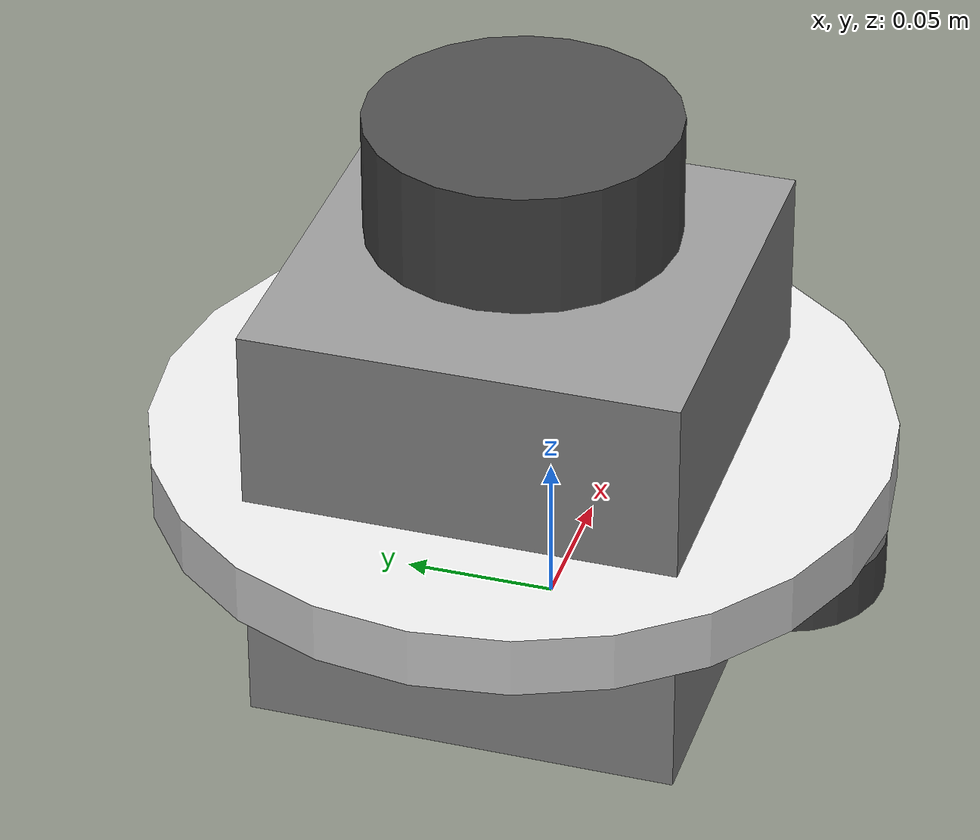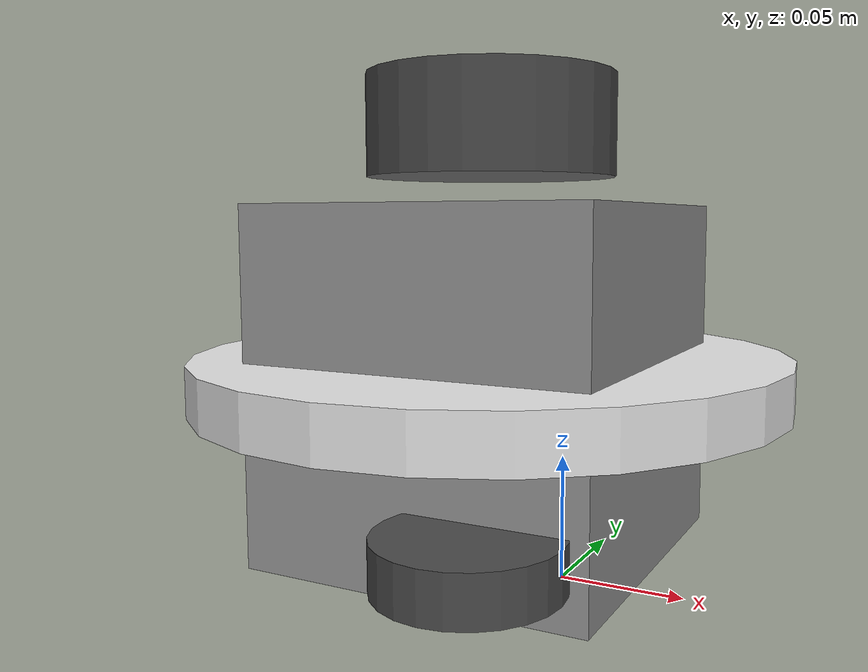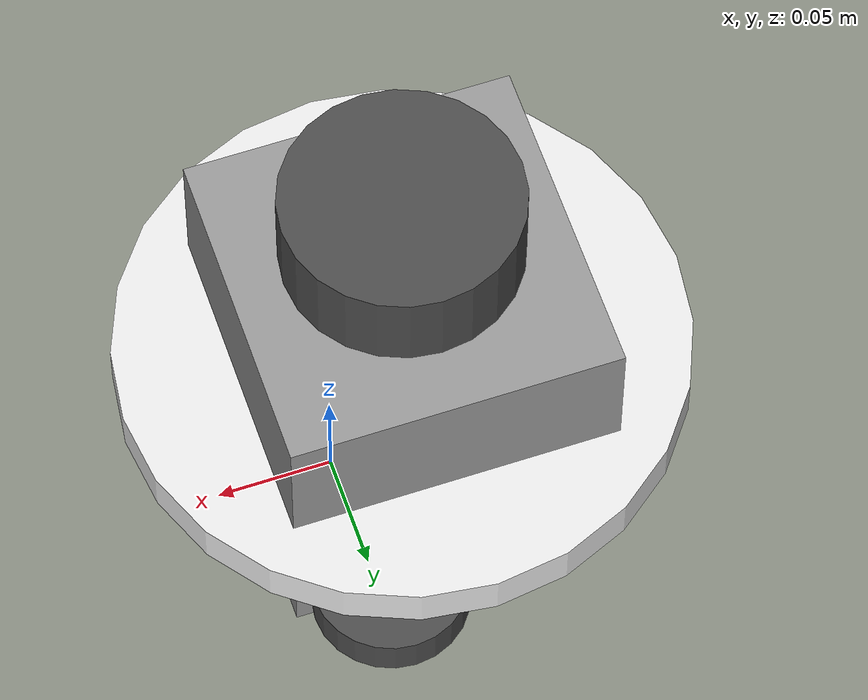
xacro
<?xml version="1.0" ?>
<robot name="turtlebot3_burger" xmlns:xacro="http://ros.org/wiki/xacro">
  <xacro:include filename="$(find Multi-UAV-Multi-Target)/urdf/turtlebot3_description/common_properties.xacro"/>
  <xacro:include filename="$(find Multi-UAV-Multi-Target)/urdf/turtlebot3_description/turtlebot3_burger.gazebo.xacro"/>

  <link name="base_footprint"/>

  <joint name="base_joint" type="fixed">
    <parent link="base_footprint"/>
    <child link="base_link"/>
    <origin xyz="0.0 0.0 0.010" rpy="0 0 0"/>
  </joint>

  <link name="base_link">
    <visual>
      <origin xyz="-0.032 0 0.070" rpy="0 0 0"/>
      <geometry>
        <box size="0.140 0.140 0.140"/>
        <cylinder length="0.14" radius="0.12"/>
      </geometry>
      <material name="dark"/>
    </visual>
    <collision>
      <origin xyz="-0.032 0 0.070" rpy="0 0 0"/>
      <geometry>
        <box size="0.140 0.140 0.140"/>
      </geometry>
    </collision>
    <inertial>
      <origin xyz="-0.032 0 0" rpy="0 0 0"/>
      <mass value="1"/>
      <inertia ixx="0.01" ixy="0.0" ixz="0.0"
               iyy="0.01" iyz="0.0"
               izz="0.01" />
    </inertial>
  </link>

  <joint name="contact_sensor_joint" type="fixed">
    <parent link="base_footprint"/>
    <child link="contact_sensor"/>
    <origin xyz="0.0 0.0 0.010" rpy="0 0 0"/>
  </joint>

  <link name="contact_sensor">
    <visual>
      <origin xyz="-0.032 0 0.07" rpy="0 0 0"/>
      <geometry>
        <cylinder length="0.02" radius="0.12"/>
      </geometry>
      <material name="white"/>
    </visual>
    <collision>
      <origin xyz="-0.032 0 0.07" rpy="0 0 0"/>
      <max_contacts>100</max_contacts>
      <geometry>
        <cylinder length="0.02" radius="0.12"/>
      </geometry>
    </collision>
    <inertial>
      <origin xyz="-0.032 0 0" rpy="0 0 0"/>
      <mass value="1"/>
      <inertia ixx="0.01" ixy="0" ixz="0"
               iyy="0.01" iyz="0"
               izz="0.01" />
    </inertial>
  </link>

  <joint name="wheel_left_joint" type="continuous">
    <parent link="base_link"/>
    <child link="wheel_left_link"/>
    <origin xyz="0.0 0.08 0.023" rpy="${-M_PI*0.5} 0 0"/>
    <axis xyz="0 0 1"/>
  </joint>

  <link name="wheel_left_link">
    <visual>
      <origin xyz="0 0 0" rpy="${M_PI*0.5} 0 0"/>
      <geometry>
        <cylinder length="0.018" radius="0.033"/>
      </geometry>
      <material name="dark"/>
    </visual>

    <collision>
      <origin xyz="0 0 0" rpy="0 0 0"/>
      <geometry>
        <cylinder length="0.018" radius="0.033"/>
      </geometry>
    </collision>

    <inertial>
      <origin xyz="0 0 0" />
      <mass value="0.01" />
      <inertia ixx="0.001" ixy="0.0" ixz="0.0"
               iyy="0.001" iyz="0.0"
               izz="0.001" />
    </inertial>
  </link>

  <joint name="wheel_right_joint" type="continuous">
    <parent link="base_link"/>
    <child link="wheel_right_link"/>
    <origin xyz="0.0 -0.08 0.023" rpy="${-M_PI*0.5} 0 0"/>
    <axis xyz="0 0 1"/>
  </joint>

  <link name="wheel_right_link">
    <visual>
      <origin xyz="0 0 0" rpy="${M_PI*0.5} 0 0"/>
      <geometry>
        <cylinder length="0.018" radius="0.033"/>
      </geometry>
      <material name="dark"/>
    </visual>

    <collision>
      <origin xyz="0 0 0" rpy="0 0 0"/>
      <geometry>
        <cylinder length="0.018" radius="0.033"/>
      </geometry>
    </collision>

    <inertial>
      <origin xyz="0 0 0" />
      <mass value="0.01" />
      <inertia ixx="0.001" ixy="0.0" ixz="0.0"
               iyy="0.001" iyz="0.0"
               izz="0.001" />
    </inertial>
  </link>

  <joint name="caster_back_joint" type="fixed">
    <parent link="base_link"/>
    <child link="caster_back_link"/>
    <origin xyz="-0.081 0 -0.004" rpy="${-M_PI*0.5} 0 0"/>
  </joint>

  <link name="caster_back_link">
    <collision>
      <origin xyz="0 0 0" rpy="0 0 0"/>
      <geometry>
        <box size="0.030 0.010 0.020"/>
      </geometry>
    </collision>

    <inertial>
      <origin xyz="0 0 0" />
      <mass value="0.01" />
      <inertia ixx="0.001" ixy="0.0" ixz="0.0"
               iyy="0.001" iyz="0.0"
               izz="0.001" />
    </inertial>
  </link>

  <joint name="imu_joint" type="fixed">
    <parent link="base_link"/>
    <child link="imu_link"/>
    <origin xyz="-0.032 0 0.068" rpy="0 0 0"/>
  </joint>

  <link name="imu_link"/>

  <joint name="scan_joint" type="fixed">
    <parent link="base_link"/>
    <child link="base_scan"/>
    <origin xyz="-0.032 0 0.171" rpy="0 0 0"/>
  </joint>

  <link name="base_scan">
    <visual>
      <origin xyz="0 0 0.0" rpy="0 0 0"/>
      <geometry>
        <cylinder length="0.04" radius="0.05"/>
      </geometry>
      <material name="dark"/>
    </visual>

    <collision>
      <origin xyz="0 0 0" rpy="0 0 0"/>
      <geometry>
        <cylinder length="0.04" radius="0.05"/>
      </geometry>
    </collision>

    <inertial>
      <mass value="0.01" />
      <origin xyz="0 0 0" />
      <inertia ixx="0.001" ixy="0.0" ixz="0.0"
               iyy="0.001" iyz="0.0"
               izz="0.001" />
    </inertial>
  </link>

</robot>
